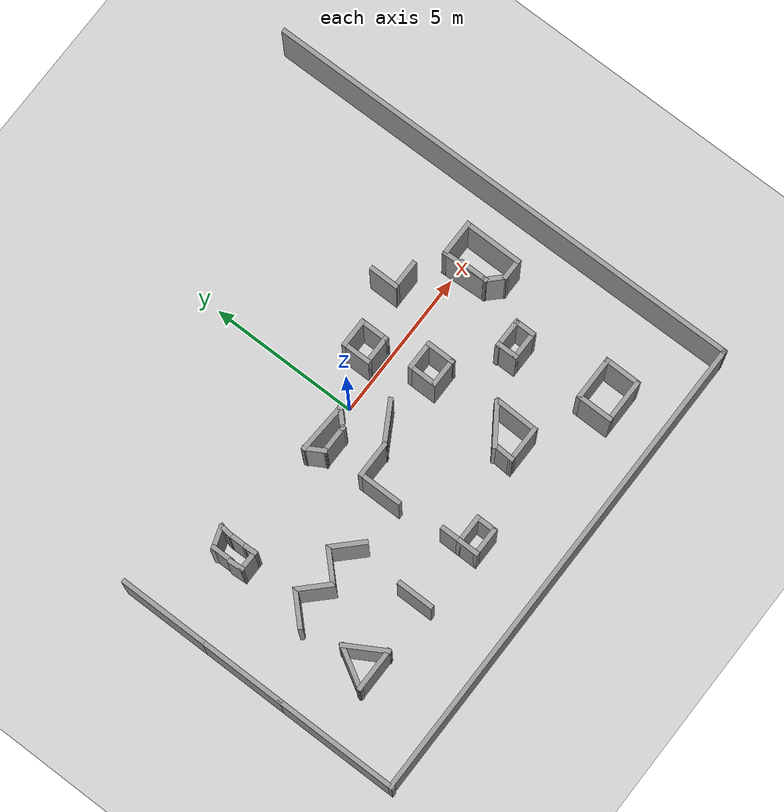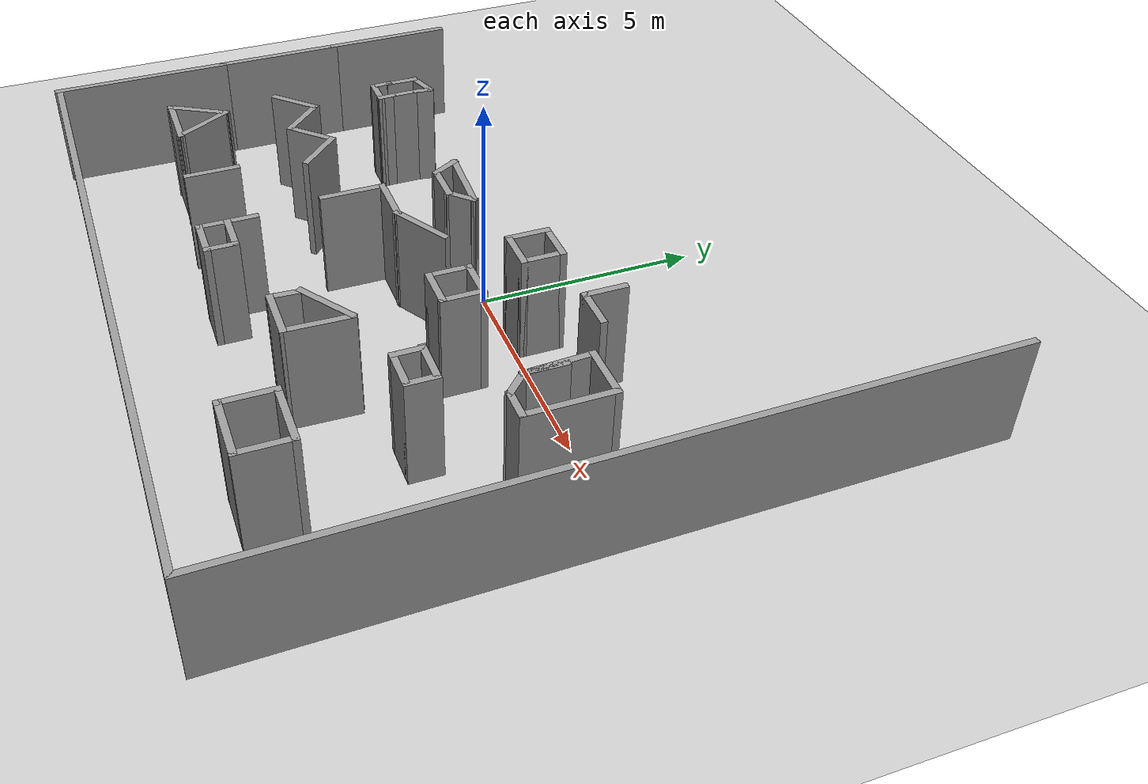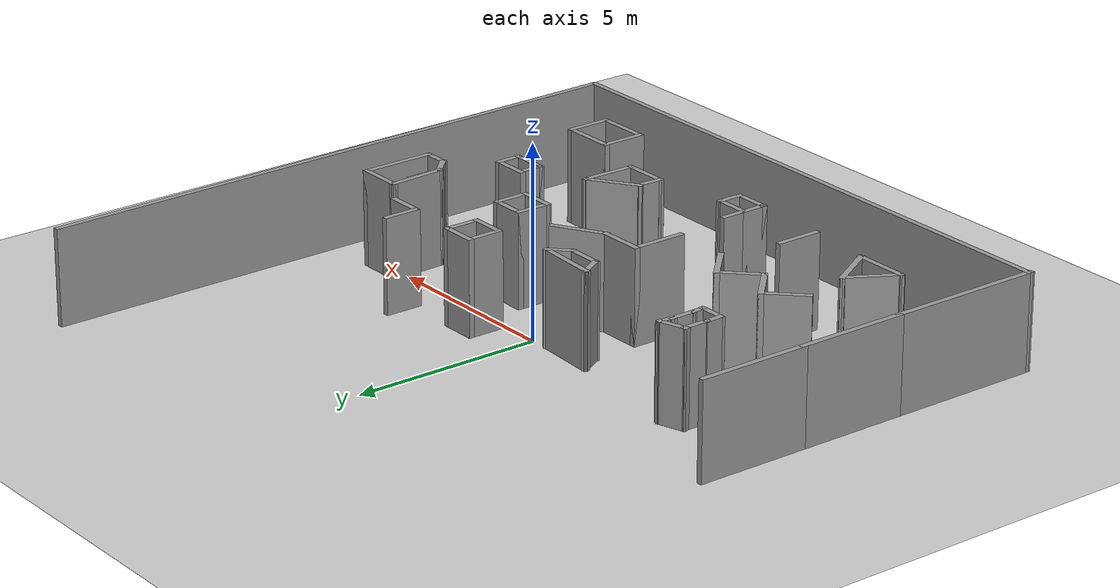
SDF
<sdf version="1.7">
 <world name="default">
  <model name="ground_plane">
   <static>1</static>
   <link name="link">
    <collision name="collision">
     <geometry><plane><normal>0 0 1</normal><size>100 100</size></plane></geometry>
     <surface>
      <contact><collide_bitmask>65535</collide_bitmask></contact>
      <friction><ode><mu>100</mu><mu2>50</mu2></ode></friction>
     </surface>
    </collision>
    <visual name="visual">
     <cast_shadows>0</cast_shadows>
     <geometry><plane><normal>0 0 1</normal><size>100 100</size></plane></geometry>
     <material>
      <script><uri>file://media/materials/scripts/gazebo.material</uri><name>Gazebo/Grey</name></script>
     </material>
    </visual>
   </link>
  </model>
  <model name="mazeworld.sdf">
   <pose>-0.284514 0.153221 0 0 -0 0</pose>
   <link name="Wall_154">
    <collision name="Wall_154_Collision">
     <geometry><box><size>0.778293 0.15 2.5</size></box></geometry>
     <pose>0 0 1.25 0 -0 0</pose>
    </collision>
    <visual name="Wall_154_Visual">
     <pose>0 0 1.25 0 -0 0</pose>
     <geometry><box><size>0.778293 0.15 2.5</size></box></geometry>
     <material>
      <script><uri>file://media/materials/scripts/gazebo.material</uri><name>Gazebo/Grey</name></script>
      <ambient>1 1 1 1</ambient>
     </material>
     <meta><layer>0</layer></meta>
    </visual>
    <pose>-5.6535 -0.150621 0 0 -0 -1.5708</pose>
   </link>
   <link name="Wall_155">
    <collision name="Wall_155_Collision">
     <geometry><box><size>0.546971 0.15 2.5</size></box></geometry>
     <pose>0 0 1.25 0 -0 0</pose>
    </collision>
    <visual name="Wall_155_Visual">
     <pose>0 0 1.25 0 -0 0</pose>
     <geometry><box><size>0.546971 0.15 2.5</size></box></geometry>
     <material>
      <script><uri>file://media/materials/scripts/gazebo.material</uri><name>Gazebo/Grey</name></script>
      <ambient>1 1 1 1</ambient>
     </material>
     <meta><layer>0</layer></meta>
    </visual>
    <pose>-5.66772 -0.662753 0 0 -0 -1.49979</pose>
   </link>
   <link name="Wall_156">
    <collision name="Wall_156_Collision">
     <geometry><box><size>0.75 0.15 2.5</size></box></geometry>
     <pose>0 0 1.25 0 -0 0</pose>
    </collision>
    <visual name="Wall_156_Visual">
     <pose>0 0 1.25 0 -0 0</pose>
     <geometry><box><size>0.75 0.15 2.5</size></box></geometry>
     <material>
      <script><uri>file://media/materials/scripts/gazebo.material</uri><name>Gazebo/Grey</name></script>
      <ambient>1 1 1 1</ambient>
     </material>
     <meta><layer>0</layer></meta>
    </visual>
    <pose>-5.35363 -0.860739 0 0 -0 0</pose>
   </link>
   <link name="Wall_157">
    <collision name="Wall_157_Collision">
     <geometry><box><size>0.450537 0.15 2.5</size></box></geometry>
     <pose>0 0 1.25 0 -0 0</pose>
    </collision>
    <visual name="Wall_157_Visual">
     <pose>0 0 1.25 0 -0 0</pose>
     <geometry><box><size>0.450537 0.15 2.5</size></box></geometry>
     <material>
      <script><uri>file://media/materials/scripts/gazebo.material</uri><name>Gazebo/Grey</name></script>
      <ambient>1 1 1 1</ambient>
     </material>
     <meta><layer>0</layer></meta>
    </visual>
    <pose>-5.06261 -0.710739 0 0 -0 1.63056</pose>
   </link>
   <link name="Wall_158">
    <collision name="Wall_158_Collision">
     <geometry><box><size>0.75 0.15 2.5</size></box></geometry>
     <pose>0 0 1.25 0 -0 0</pose>
    </collision>
    <visual name="Wall_158_Visual">
     <pose>0 0 1.25 0 -0 0</pose>
     <geometry><box><size>0.75 0.15 2.5</size></box></geometry>
     <material>
      <script><uri>file://media/materials/scripts/gazebo.material</uri><name>Gazebo/Grey</name></script>
      <ambient>1 1 1 1</ambient>
     </material>
     <meta><layer>0</layer></meta>
    </visual>
    <pose>-5.07158 -0.232446 0 0 -0 1.5708</pose>
   </link>
   <link name="Wall_159">
    <collision name="Wall_159_Collision">
     <geometry><box><size>0.480559 0.15 2.5</size></box></geometry>
     <pose>0 0 1.25 0 -0 0</pose>
    </collision>
    <visual name="Wall_159_Visual">
     <pose>0 0 1.25 0 -0 0</pose>
     <geometry><box><size>0.480559 0.15 2.5</size></box></geometry>
     <material>
      <script><uri>file://media/materials/scripts/gazebo.material</uri><name>Gazebo/Grey</name></script>
      <ambient>1 1 1 1</ambient>
     </material>
     <meta><layer>0</layer></meta>
    </visual>
    <pose>-5.04846 0.203407 0 0 -0 1.43086</pose>
   </link>
   <link name="Wall_160">
    <collision name="Wall_160_Collision">
     <geometry><box><size>0.810467 0.15 2.5</size></box></geometry>
     <pose>0 0 1.25 0 -0 0</pose>
    </collision>
    <visual name="Wall_160_Visual">
     <pose>0 0 1.25 0 -0 0</pose>
     <geometry><box><size>0.810467 0.15 2.5</size></box></geometry>
     <material>
      <script><uri>file://media/materials/scripts/gazebo.material</uri><name>Gazebo/Grey</name></script>
      <ambient>1 1 1 1</ambient>
     </material>
     <meta><layer>0</layer></meta>
    </visual>
    <pose>-5.36771 0.265539 0 0 -0 -2.82754</pose>
   </link>
   <link name="Wall_162">
    <collision name="Wall_162_Collision">
     <geometry><box><size>0.75 0.15 2.5</size></box></geometry>
     <pose>0 0 1.25 0 -0 0</pose>
    </collision>
    <visual name="Wall_162_Visual">
     <pose>0 0 1.25 0 -0 0</pose>
     <geometry><box><size>0.75 0.15 2.5</size></box></geometry>
     <material>
      <script><uri>file://media/materials/scripts/gazebo.material</uri><name>Gazebo/Grey</name></script>
      <ambient>1 1 1 1</ambient>
     </material>
     <meta><layer>0</layer></meta>
    </visual>
    <pose>-1.59908 -0.379212 0 0 -0 -1.0472</pose>
   </link>
   <link name="Wall_163">
    <collision name="Wall_163_Collision">
     <geometry><box><size>1 0.15 2.5</size></box></geometry>
     <pose>0 0 1.25 0 -0 0</pose>
    </collision>
    <visual name="Wall_163_Visual">
     <pose>0 0 1.25 0 -0 0</pose>
     <geometry><box><size>1 0.15 2.5</size></box></geometry>
     <material>
      <script><uri>file://media/materials/scripts/gazebo.material</uri><name>Gazebo/Grey</name></script>
      <ambient>1 1 1 1</ambient>
     </material>
     <meta><layer>0</layer></meta>
    </visual>
    <pose>-1.02408 -0.639019 0 0 -0 0</pose>
   </link>
   <link name="Wall_164">
    <collision name="Wall_164_Collision">
     <geometry><box><size>0.75 0.15 2.5</size></box></geometry>
     <pose>0 0 1.25 0 -0 0</pose>
    </collision>
    <visual name="Wall_164_Visual">
     <pose>0 0 1.25 0 -0 0</pose>
     <geometry><box><size>0.75 0.15 2.5</size></box></geometry>
     <material>
      <script><uri>file://media/materials/scripts/gazebo.material</uri><name>Gazebo/Grey</name></script>
      <ambient>1 1 1 1</ambient>
     </material>
     <meta><layer>0</layer></meta>
    </visual>
    <pose>-0.386951 -0.426887 0 0 -0 0.785398</pose>
   </link>
   <link name="Wall_165">
    <collision name="Wall_165_Collision">
     <geometry><box><size>1.72715 0.15 2.5</size></box></geometry>
     <pose>0 0 1.25 0 -0 0</pose>
    </collision>
    <visual name="Wall_165_Visual">
     <pose>0 0 1.25 0 -0 0</pose>
     <geometry><box><size>1.72715 0.15 2.5</size></box></geometry>
     <material>
      <script><uri>file://media/materials/scripts/gazebo.material</uri><name>Gazebo/Grey</name></script>
      <ambient>1 1 1 1</ambient>
     </material>
     <meta><layer>0</layer></meta>
    </visual>
    <pose>-0.961951 -0.16708 0 0 -0 3.0811</pose>
   </link>
   <link name="Wall_167">
    <collision name="Wall_167_Collision">
     <geometry><box><size>1 0.15 2.5</size></box></geometry>
     <pose>0 0 1.25 0 -0 0</pose>
    </collision>
    <visual name="Wall_167_Visual">
     <pose>0 0 1.25 0 -0 0</pose>
     <geometry><box><size>1 0.15 2.5</size></box></geometry>
     <material>
      <script><uri>file://media/materials/scripts/gazebo.material</uri><name>Gazebo/Grey</name></script>
      <ambient>1 1 1 1</ambient>
     </material>
     <meta><layer>0</layer></meta>
    </visual>
    <pose>1.41972 0.417555 0 0 -0 -1.5708</pose>
   </link>
   <link name="Wall_168">
    <collision name="Wall_168_Collision">
     <geometry><box><size>1 0.15 2.5</size></box></geometry>
     <pose>0 0 1.25 0 -0 0</pose>
    </collision>
    <visual name="Wall_168_Visual">
     <pose>0 0 1.25 0 -0 0</pose>
     <geometry><box><size>1 0.15 2.5</size></box></geometry>
     <material>
      <script><uri>file://media/materials/scripts/gazebo.material</uri><name>Gazebo/Grey</name></script>
      <ambient>1 1 1 1</ambient>
     </material>
     <meta><layer>0</layer></meta>
    </visual>
    <pose>1.84472 -0.007445 0 0 -0 0</pose>
   </link>
   <link name="Wall_169">
    <collision name="Wall_169_Collision">
     <geometry><box><size>1 0.15 2.5</size></box></geometry>
     <pose>0 0 1.25 0 -0 0</pose>
    </collision>
    <visual name="Wall_169_Visual">
     <pose>0 0 1.25 0 -0 0</pose>
     <geometry><box><size>1 0.15 2.5</size></box></geometry>
     <material>
      <script><uri>file://media/materials/scripts/gazebo.material</uri><name>Gazebo/Grey</name></script>
      <ambient>1 1 1 1</ambient>
     </material>
     <meta><layer>0</layer></meta>
    </visual>
    <pose>2.26972 0.417555 0 0 -0 1.5708</pose>
   </link>
   <link name="Wall_170">
    <collision name="Wall_170_Collision">
     <geometry><box><size>1 0.15 2.5</size></box></geometry>
     <pose>0 0 1.25 0 -0 0</pose>
    </collision>
    <visual name="Wall_170_Visual">
     <pose>0 0 1.25 0 -0 0</pose>
     <geometry><box><size>1 0.15 2.5</size></box></geometry>
     <material>
      <script><uri>file://media/materials/scripts/gazebo.material</uri><name>Gazebo/Grey</name></script>
      <ambient>1 1 1 1</ambient>
     </material>
     <meta><layer>0</layer></meta>
    </visual>
    <pose>1.84472 0.842555 0 0 -0 3.14159</pose>
   </link>
   <link name="Wall_172">
    <collision name="Wall_172_Collision">
     <geometry><box><size>1 0.15 2.5</size></box></geometry>
     <pose>0 0 1.25 0 -0 0</pose>
    </collision>
    <visual name="Wall_172_Visual">
     <pose>0 0 1.25 0 -0 0</pose>
     <geometry><box><size>1 0.15 2.5</size></box></geometry>
     <material>
      <script><uri>file://media/materials/scripts/gazebo.material</uri><name>Gazebo/Grey</name></script>
      <ambient>1 1 1 1</ambient>
     </material>
     <meta><layer>0</layer></meta>
    </visual>
    <pose>2.07046 -1.53466 0 0 -0 -1.5708</pose>
   </link>
   <link name="Wall_173">
    <collision name="Wall_173_Collision">
     <geometry><box><size>1 0.15 2.5</size></box></geometry>
     <pose>0 0 1.25 0 -0 0</pose>
    </collision>
    <visual name="Wall_173_Visual">
     <pose>0 0 1.25 0 -0 0</pose>
     <geometry><box><size>1 0.15 2.5</size></box></geometry>
     <material>
      <script><uri>file://media/materials/scripts/gazebo.material</uri><name>Gazebo/Grey</name></script>
      <ambient>1 1 1 1</ambient>
     </material>
     <meta><layer>0</layer></meta>
    </visual>
    <pose>2.49546 -1.95966 0 0 -0 0</pose>
   </link>
   <link name="Wall_174">
    <collision name="Wall_174_Collision">
     <geometry><box><size>1 0.15 2.5</size></box></geometry>
     <pose>0 0 1.25 0 -0 0</pose>
    </collision>
    <visual name="Wall_174_Visual">
     <pose>0 0 1.25 0 -0 0</pose>
     <geometry><box><size>1 0.15 2.5</size></box></geometry>
     <material>
      <script><uri>file://media/materials/scripts/gazebo.material</uri><name>Gazebo/Grey</name></script>
      <ambient>1 1 1 1</ambient>
     </material>
     <meta><layer>0</layer></meta>
    </visual>
    <pose>2.92046 -1.53466 0 0 -0 1.5708</pose>
   </link>
   <link name="Wall_175">
    <collision name="Wall_175_Collision">
     <geometry><box><size>1 0.15 2.5</size></box></geometry>
     <pose>0 0 1.25 0 -0 0</pose>
    </collision>
    <visual name="Wall_175_Visual">
     <pose>0 0 1.25 0 -0 0</pose>
     <geometry><box><size>1 0.15 2.5</size></box></geometry>
     <material>
      <script><uri>file://media/materials/scripts/gazebo.material</uri><name>Gazebo/Grey</name></script>
      <ambient>1 1 1 1</ambient>
     </material>
     <meta><layer>0</layer></meta>
    </visual>
    <pose>2.49546 -1.10966 0 0 -0 3.14159</pose>
   </link>
   <link name="Wall_177">
    <collision name="Wall_177_Collision">
     <geometry><box><size>1 0.15 2.5</size></box></geometry>
     <pose>0 0 1.25 0 -0 0</pose>
    </collision>
    <visual name="Wall_177_Visual">
     <pose>0 0 1.25 0 -0 0</pose>
     <geometry><box><size>1 0.15 2.5</size></box></geometry>
     <material>
      <script><uri>file://media/materials/scripts/gazebo.material</uri><name>Gazebo/Grey</name></script>
      <ambient>1 1 1 1</ambient>
     </material>
     <meta><layer>0</layer></meta>
    </visual>
    <pose>3.71145 1.15317 0 0 -0 -1.5708</pose>
   </link>
   <link name="Wall_178">
    <collision name="Wall_178_Collision">
     <geometry><box><size>1 0.15 2.5</size></box></geometry>
     <pose>0 0 1.25 0 -0 0</pose>
    </collision>
    <visual name="Wall_178_Visual">
     <pose>0 0 1.25 0 -0 0</pose>
     <geometry><box><size>1 0.15 2.5</size></box></geometry>
     <material>
      <script><uri>file://media/materials/scripts/gazebo.material</uri><name>Gazebo/Grey</name></script>
      <ambient>1 1 1 1</ambient>
     </material>
     <meta><layer>0</layer></meta>
    </visual>
    <pose>4.13645 0.72817 0 0 -0 0</pose>
   </link>
   <link name="Wall_182">
    <collision name="Wall_182_Collision">
     <geometry><box><size>1.25 0.15 2.5</size></box></geometry>
     <pose>0 0 1.25 0 -0 0</pose>
    </collision>
    <visual name="Wall_182_Visual">
     <pose>0 0 1.25 0 -0 0</pose>
     <geometry><box><size>1.25 0.15 2.5</size></box></geometry>
     <material>
      <script><uri>file://media/materials/scripts/gazebo.material</uri><name>Gazebo/Grey</name></script>
      <ambient>1 1 1 1</ambient>
     </material>
     <meta><layer>0</layer></meta>
    </visual>
    <pose>-5.57582 -2.84271 0 0 -0 0.785398</pose>
   </link>
   <link name="Wall_183">
    <collision name="Wall_183_Collision">
     <geometry><box><size>1.25 0.15 2.5</size></box></geometry>
     <pose>0 0 1.25 0 -0 0</pose>
    </collision>
    <visual name="Wall_183_Visual">
     <pose>0 0 1.25 0 -0 0</pose>
     <geometry><box><size>1.25 0.15 2.5</size></box></geometry>
     <material>
      <script><uri>file://media/materials/scripts/gazebo.material</uri><name>Gazebo/Grey</name></script>
      <ambient>1 1 1 1</ambient>
     </material>
     <meta><layer>0</layer></meta>
    </visual>
    <pose>-4.798 -2.84271 0 0 -0 -0.785398</pose>
   </link>
   <link name="Wall_185">
    <collision name="Wall_185_Collision">
     <geometry><box><size>1.25 0.15 2.5</size></box></geometry>
     <pose>0 0 1.25 0 -0 0</pose>
    </collision>
    <visual name="Wall_185_Visual">
     <pose>0 0 1.25 0 -0 0</pose>
     <geometry><box><size>1.25 0.15 2.5</size></box></geometry>
     <material>
      <script><uri>file://media/materials/scripts/gazebo.material</uri><name>Gazebo/Grey</name></script>
      <ambient>1 1 1 1</ambient>
     </material>
     <meta><layer>0</layer></meta>
    </visual>
    <pose>-4.02018 -2.84271 0 0 -0 0.785398</pose>
   </link>
   <link name="Wall_186">
    <collision name="Wall_186_Collision">
     <geometry><box><size>1.25 0.15 2.5</size></box></geometry>
     <pose>0 0 1.25 0 -0 0</pose>
    </collision>
    <visual name="Wall_186_Visual">
     <pose>0 0 1.25 0 -0 0</pose>
     <geometry><box><size>1.25 0.15 2.5</size></box></geometry>
     <material>
      <script><uri>file://media/materials/scripts/gazebo.material</uri><name>Gazebo/Grey</name></script>
      <ambient>1 1 1 1</ambient>
     </material>
     <meta><layer>0</layer></meta>
    </visual>
    <pose>-3.24236 -2.84271 0 0 -0 -0.785398</pose>
   </link>
   <link name="Wall_188">
    <collision name="Wall_188_Collision">
     <geometry><box><size>1.5 0.15 2.5</size></box></geometry>
     <pose>0 0 1.25 0 -0 0</pose>
    </collision>
    <visual name="Wall_188_Visual">
     <pose>0 0 1.25 0 -0 0</pose>
     <geometry><box><size>1.5 0.15 2.5</size></box></geometry>
     <material>
      <script><uri>file://media/materials/scripts/gazebo.material</uri><name>Gazebo/Grey</name></script>
      <ambient>1 1 1 1</ambient>
     </material>
     <meta><layer>0</layer></meta>
    </visual>
    <pose>-1.35298 -2.58492 0 0 -0 1.5708</pose>
   </link>
   <link name="Wall_189">
    <collision name="Wall_189_Collision">
     <geometry><box><size>1.25 0.15 2.5</size></box></geometry>
     <pose>0 0 1.25 0 -0 0</pose>
    </collision>
    <visual name="Wall_189_Visual">
     <pose>0 0 1.25 0 -0 0</pose>
     <geometry><box><size>1.25 0.15 2.5</size></box></geometry>
     <material>
      <script><uri>file://media/materials/scripts/gazebo.material</uri><name>Gazebo/Grey</name></script>
      <ambient>1 1 1 1</ambient>
     </material>
     <meta><layer>0</layer></meta>
    </visual>
    <pose>-0.802983 -1.90992 0 0 -0 0</pose>
   </link>
   <link name="Wall_190">
    <collision name="Wall_190_Collision">
     <geometry><box><size>1.5 0.15 2.5</size></box></geometry>
     <pose>0 0 1.25 0 -0 0</pose>
    </collision>
    <visual name="Wall_190_Visual">
     <pose>0 0 1.25 0 -0 0</pose>
     <geometry><box><size>1.5 0.15 2.5</size></box></geometry>
     <material>
      <script><uri>file://media/materials/scripts/gazebo.material</uri><name>Gazebo/Grey</name></script>
      <ambient>1 1 1 1</ambient>
     </material>
     <meta><layer>0</layer></meta>
    </visual>
    <pose>0.331584 -1.57242 0 0 -0 0.523599</pose>
   </link>
   <link name="Wall_192">
    <collision name="Wall_192_Collision">
     <geometry><box><size>0.75 0.15 2.5</size></box></geometry>
     <pose>0 0 1.25 0 -0 0</pose>
    </collision>
    <visual name="Wall_192_Visual">
     <pose>0 0 1.25 0 -0 0</pose>
     <geometry><box><size>0.75 0.15 2.5</size></box></geometry>
     <material>
      <script><uri>file://media/materials/scripts/gazebo.material</uri><name>Gazebo/Grey</name></script>
      <ambient>1 1 1 1</ambient>
     </material>
     <meta><layer>0</layer></meta>
    </visual>
    <pose>4.16413 -3.05064 0 0 -0 -1.5708</pose>
   </link>
   <link name="Wall_193">
    <collision name="Wall_193_Collision">
     <geometry><box><size>1 0.15 2.5</size></box></geometry>
     <pose>0 0 1.25 0 -0 0</pose>
    </collision>
    <visual name="Wall_193_Visual">
     <pose>0 0 1.25 0 -0 0</pose>
     <geometry><box><size>1 0.15 2.5</size></box></geometry>
     <material>
      <script><uri>file://media/materials/scripts/gazebo.material</uri><name>Gazebo/Grey</name></script>
      <ambient>1 1 1 1</ambient>
     </material>
     <meta><layer>0</layer></meta>
    </visual>
    <pose>4.58913 -3.35064 0 0 -0 0</pose>
   </link>
   <link name="Wall_194">
    <collision name="Wall_194_Collision">
     <geometry><box><size>0.75 0.15 2.5</size></box></geometry>
     <pose>0 0 1.25 0 -0 0</pose>
    </collision>
    <visual name="Wall_194_Visual">
     <pose>0 0 1.25 0 -0 0</pose>
     <geometry><box><size>0.75 0.15 2.5</size></box></geometry>
     <material>
      <script><uri>file://media/materials/scripts/gazebo.material</uri><name>Gazebo/Grey</name></script>
      <ambient>1 1 1 1</ambient>
     </material>
     <meta><layer>0</layer></meta>
    </visual>
    <pose>5.01413 -3.05064 0 0 -0 1.5708</pose>
   </link>
   <link name="Wall_197">
    <collision name="Wall_197_Collision">
     <geometry><box><size>1 0.15 2.5</size></box></geometry>
     <pose>0 0 1.25 0 -0 0</pose>
    </collision>
    <visual name="Wall_197_Visual">
     <pose>0 0 1.25 0 -0 0</pose>
     <geometry><box><size>1 0.15 2.5</size></box></geometry>
     <material>
      <script><uri>file://media/materials/scripts/gazebo.material</uri><name>Gazebo/Grey</name></script>
      <ambient>1 1 1 1</ambient>
     </material>
     <meta><layer>0</layer></meta>
    </visual>
    <pose>4.55331 -2.75064 0 0 -0 0</pose>
   </link>
   <link name="Wall_204">
    <collision name="Wall_204_Collision">
     <geometry><box><size>1.5 0.15 2.5</size></box></geometry>
     <pose>0 0 1.25 0 -0 0</pose>
    </collision>
    <visual name="Wall_204_Visual">
     <pose>0 0 1.25 0 -0 0</pose>
     <geometry><box><size>1.5 0.15 2.5</size></box></geometry>
     <material>
      <script><uri>file://media/materials/scripts/gazebo.material</uri><name>Gazebo/Grey</name></script>
      <ambient>1 1 1 1</ambient>
     </material>
     <meta><layer>0</layer></meta>
    </visual>
    <pose>-5.9805 -5.10528 0 0 -0 1.0472</pose>
   </link>
   <link name="Wall_205">
    <collision name="Wall_205_Collision">
     <geometry><box><size>1.5 0.15 2.5</size></box></geometry>
     <pose>0 0 1.25 0 -0 0</pose>
    </collision>
    <visual name="Wall_205_Visual">
     <pose>0 0 1.25 0 -0 0</pose>
     <geometry><box><size>1.5 0.15 2.5</size></box></geometry>
     <material>
      <script><uri>file://media/materials/scripts/gazebo.material</uri><name>Gazebo/Grey</name></script>
      <ambient>1 1 1 1</ambient>
     </material>
     <meta><layer>0</layer></meta>
    </visual>
    <pose>-5.30551 -5.10528 0 0 -0 -1.0472</pose>
   </link>
   <link name="Wall_206">
    <collision name="Wall_206_Collision">
     <geometry><box><size>1.5 0.15 2.5</size></box></geometry>
     <pose>0 0 1.25 0 -0 0</pose>
    </collision>
    <visual name="Wall_206_Visual">
     <pose>0 0 1.25 0 -0 0</pose>
     <geometry><box><size>1.5 0.15 2.5</size></box></geometry>
     <material>
      <script><uri>file://media/materials/scripts/gazebo.material</uri><name>Gazebo/Grey</name></script>
      <ambient>1 1 1 1</ambient>
     </material>
     <meta><layer>0</layer></meta>
    </visual>
    <pose>-5.643 -5.68984 0 0 -0 3.14159</pose>
   </link>
   <link name="Wall_209">
    <collision name="Wall_209_Collision">
     <geometry><box><size>1.25 0.15 2.5</size></box></geometry>
     <pose>0 0 1.25 0 -0 0</pose>
    </collision>
    <visual name="Wall_209_Visual">
     <pose>0 0 1.25 0 -0 0</pose>
     <geometry><box><size>1.25 0.15 2.5</size></box></geometry>
     <material>
      <script><uri>file://media/materials/scripts/gazebo.material</uri><name>Gazebo/Grey</name></script>
      <ambient>1 1 1 1</ambient>
     </material>
     <meta><layer>0</layer></meta>
    </visual>
    <pose>-3.19455 -5.31099 0 0 -0 1.5708</pose>
   </link>
   <link name="Wall_212">
    <collision name="Wall_212_Collision">
     <geometry><box><size>16.3828 0.15 2.5</size></box></geometry>
     <pose>0 0 1.25 0 -0 0</pose>
    </collision>
    <visual name="Wall_212_Visual">
     <pose>0 0 1.25 0 -0 0</pose>
     <geometry><box><size>16.3828 0.15 2.5</size></box></geometry>
     <material>
      <script><uri>file://media/materials/scripts/gazebo.material</uri><name>Gazebo/Grey</name></script>
      <ambient>1 1 1 1</ambient>
     </material>
     <meta><layer>0</layer></meta>
    </visual>
    <pose>7.94426 -0.003003 0 0 -0 -1.56269</pose>
   </link>
   <link name="Wall_215">
    <collision name="Wall_215_Collision">
     <geometry><box><size>0.75 0.15 2.5</size></box></geometry>
     <pose>0 0 1.25 0 -0 0</pose>
    </collision>
    <visual name="Wall_215_Visual">
     <pose>0 0 1.25 0 -0 0</pose>
     <geometry><box><size>0.75 0.15 2.5</size></box></geometry>
     <material>
      <script><uri>file://media/materials/scripts/gazebo.material</uri><name>Gazebo/Grey</name></script>
      <ambient>1 1 1 1</ambient>
     </material>
     <meta><layer>0</layer></meta>
    </visual>
    <pose>-1.15999 -5.07272 0 0 -0 -1.5708</pose>
   </link>
   <link name="Wall_216">
    <collision name="Wall_216_Collision">
     <geometry><box><size>1 0.15 2.5</size></box></geometry>
     <pose>0 0 1.25 0 -0 0</pose>
    </collision>
    <visual name="Wall_216_Visual">
     <pose>0 0 1.25 0 -0 0</pose>
     <geometry><box><size>1 0.15 2.5</size></box></geometry>
     <material>
      <script><uri>file://media/materials/scripts/gazebo.material</uri><name>Gazebo/Grey</name></script>
      <ambient>1 1 1 1</ambient>
     </material>
     <meta><layer>0</layer></meta>
    </visual>
    <pose>-0.734989 -5.37272 0 0 -0 0</pose>
   </link>
   <link name="Wall_217">
    <collision name="Wall_217_Collision">
     <geometry><box><size>0.75 0.15 2.5</size></box></geometry>
     <pose>0 0 1.25 0 -0 0</pose>
    </collision>
    <visual name="Wall_217_Visual">
     <pose>0 0 1.25 0 -0 0</pose>
     <geometry><box><size>0.75 0.15 2.5</size></box></geometry>
     <material>
      <script><uri>file://media/materials/scripts/gazebo.material</uri><name>Gazebo/Grey</name></script>
      <ambient>1 1 1 1</ambient>
     </material>
     <meta><layer>0</layer></meta>
    </visual>
    <pose>-0.309989 -5.67272 0 0 -0 -1.5708</pose>
   </link>
   <link name="Wall_218">
    <collision name="Wall_218_Collision">
     <geometry><box><size>1 0.15 2.5</size></box></geometry>
     <pose>0 0 1.25 0 -0 0</pose>
    </collision>
    <visual name="Wall_218_Visual">
     <pose>0 0 1.25 0 -0 0</pose>
     <geometry><box><size>1 0.15 2.5</size></box></geometry>
     <material>
      <script><uri>file://media/materials/scripts/gazebo.material</uri><name>Gazebo/Grey</name></script>
      <ambient>1 1 1 1</ambient>
     </material>
     <meta><layer>0</layer></meta>
    </visual>
    <pose>-0.734989 -5.97272 0 0 -0 3.14159</pose>
   </link>
   <link name="Wall_219">
    <collision name="Wall_219_Collision">
     <geometry><box><size>0.75 0.15 2.5</size></box></geometry>
     <pose>0 0 1.25 0 -0 0</pose>
    </collision>
    <visual name="Wall_219_Visual">
     <pose>0 0 1.25 0 -0 0</pose>
     <geometry><box><size>0.75 0.15 2.5</size></box></geometry>
     <material>
      <script><uri>file://media/materials/scripts/gazebo.material</uri><name>Gazebo/Grey</name></script>
      <ambient>1 1 1 1</ambient>
     </material>
     <meta><layer>0</layer></meta>
    </visual>
    <pose>-1.15999 -5.67272 0 0 -0 1.5708</pose>
   </link>
   <link name="Wall_223">
    <collision name="Wall_223_Collision">
     <geometry><box><size>0.770679 0.15 2.5</size></box></geometry>
     <pose>0 0 1.25 0 -0 0</pose>
    </collision>
    <visual name="Wall_223_Visual">
     <pose>0 0 1.25 0 -0 0</pose>
     <geometry><box><size>0.770679 0.15 2.5</size></box></geometry>
     <material>
      <script><uri>file://media/materials/scripts/gazebo.material</uri><name>Gazebo/Grey</name></script>
      <ambient>1 1 1 1</ambient>
     </material>
     <meta><layer>0</layer></meta>
    </visual>
    <pose>1.68817 -4.79593 0 0 -0 -1.62855</pose>
   </link>
   <link name="Wall_224">
    <collision name="Wall_224_Collision">
     <geometry><box><size>1.25 0.15 2.5</size></box></geometry>
     <pose>0 0 1.25 0 -0 0</pose>
    </collision>
    <visual name="Wall_224_Visual">
     <pose>0 0 1.25 0 -0 0</pose>
     <geometry><box><size>1.25 0.15 2.5</size></box></geometry>
     <material>
      <script><uri>file://media/materials/scripts/gazebo.material</uri><name>Gazebo/Grey</name></script>
      <ambient>1 1 1 1</ambient>
     </material>
     <meta><layer>0</layer></meta>
    </visual>
    <pose>2.22026 -5.10575 0 0 -0 0</pose>
   </link>
   <link name="Wall_225">
    <collision name="Wall_225_Collision">
     <geometry><box><size>1.51964 0.15 2.5</size></box></geometry>
     <pose>0 0 1.25 0 -0 0</pose>
    </collision>
    <visual name="Wall_225_Visual">
     <pose>0 0 1.25 0 -0 0</pose>
     <geometry><box><size>1.51964 0.15 2.5</size></box></geometry>
     <material>
      <script><uri>file://media/materials/scripts/gazebo.material</uri><name>Gazebo/Grey</name></script>
      <ambient>1 1 1 1</ambient>
     </material>
     <meta><layer>0</layer></meta>
    </visual>
    <pose>2.78817 -4.42093 0 0 -0 1.54465</pose>
   </link>
   <link name="Wall_226">
    <collision name="Wall_226_Collision">
     <geometry><box><size>1.48135 0.15 2.5</size></box></geometry>
     <pose>0 0 1.25 0 -0 0</pose>
    </collision>
    <visual name="Wall_226_Visual">
     <pose>0 0 1.25 0 -0 0</pose>
     <geometry><box><size>1.48135 0.15 2.5</size></box></geometry>
     <material>
      <script><uri>file://media/materials/scripts/gazebo.material</uri><name>Gazebo/Grey</name></script>
      <ambient>1 1 1 1</ambient>
     </material>
     <meta><layer>0</layer></meta>
    </visual>
    <pose>2.22026 -4.11111 0 0 -0 -2.54317</pose>
   </link>
   <link name="Wall_228">
    <collision name="Wall_228_Collision">
     <geometry><box><size>1.25 0.15 2.5</size></box></geometry>
     <pose>0 0 1.25 0 -0 0</pose>
    </collision>
    <visual name="Wall_228_Visual">
     <pose>0 0 1.25 0 -0 0</pose>
     <geometry><box><size>1.25 0.15 2.5</size></box></geometry>
     <material>
      <script><uri>file://media/materials/scripts/gazebo.material</uri><name>Gazebo/Grey</name></script>
      <ambient>1 1 1 1</ambient>
     </material>
     <meta><layer>0</layer></meta>
    </visual>
    <pose>4.3572 -6.11089 0 0 -0 -1.5708</pose>
   </link>
   <link name="Wall_229">
    <collision name="Wall_229_Collision">
     <geometry><box><size>1.5 0.15 2.5</size></box></geometry>
     <pose>0 0 1.25 0 -0 0</pose>
    </collision>
    <visual name="Wall_229_Visual">
     <pose>0 0 1.25 0 -0 0</pose>
     <geometry><box><size>1.5 0.15 2.5</size></box></geometry>
     <material>
      <script><uri>file://media/materials/scripts/gazebo.material</uri><name>Gazebo/Grey</name></script>
      <ambient>1 1 1 1</ambient>
     </material>
     <meta><layer>0</layer></meta>
    </visual>
    <pose>5.0322 -6.66089 0 0 -0 0</pose>
   </link>
   <link name="Wall_230">
    <collision name="Wall_230_Collision">
     <geometry><box><size>1.25 0.15 2.5</size></box></geometry>
     <pose>0 0 1.25 0 -0 0</pose>
    </collision>
    <visual name="Wall_230_Visual">
     <pose>0 0 1.25 0 -0 0</pose>
     <geometry><box><size>1.25 0.15 2.5</size></box></geometry>
     <material>
      <script><uri>file://media/materials/scripts/gazebo.material</uri><name>Gazebo/Grey</name></script>
      <ambient>1 1 1 1</ambient>
     </material>
     <meta><layer>0</layer></meta>
    </visual>
    <pose>5.7072 -6.11089 0 0 -0 1.5708</pose>
   </link>
   <link name="Wall_231">
    <collision name="Wall_231_Collision">
     <geometry><box><size>1.5 0.15 2.5</size></box></geometry>
     <pose>0 0 1.25 0 -0 0</pose>
    </collision>
    <visual name="Wall_231_Visual">
     <pose>0 0 1.25 0 -0 0</pose>
     <geometry><box><size>1.5 0.15 2.5</size></box></geometry>
     <material>
      <script><uri>file://media/materials/scripts/gazebo.material</uri><name>Gazebo/Grey</name></script>
      <ambient>1 1 1 1</ambient>
     </material>
     <meta><layer>0</layer></meta>
    </visual>
    <pose>5.0322 -5.56089 0 0 -0 3.14159</pose>
   </link>
   <link name="Wall_233">
    <collision name="Wall_233_Collision">
     <geometry><box><size>1 0.15 2.5</size></box></geometry>
     <pose>0 0 1.25 0 -0 0</pose>
    </collision>
    <visual name="Wall_233_Visual">
     <pose>0 0 1.25 0 -0 0</pose>
     <geometry><box><size>1 0.15 2.5</size></box></geometry>
     <material>
      <script><uri>file://media/materials/scripts/gazebo.material</uri><name>Gazebo/Grey</name></script>
      <ambient>1 1 1 1</ambient>
     </material>
     <meta><layer>0</layer></meta>
    </visual>
    <pose>5.46781 -0.826954 0 0 -0 -1.5708</pose>
   </link>
   <link name="Wall_234">
    <collision name="Wall_234_Collision">
     <geometry><box><size>0.75 0.15 2.5</size></box></geometry>
     <pose>0 0 1.25 0 -0 0</pose>
    </collision>
    <visual name="Wall_234_Visual">
     <pose>0 0 1.25 0 -0 0</pose>
     <geometry><box><size>0.75 0.15 2.5</size></box></geometry>
     <material>
      <script><uri>file://media/materials/scripts/gazebo.material</uri><name>Gazebo/Grey</name></script>
      <ambient>1 1 1 1</ambient>
     </material>
     <meta><layer>0</layer></meta>
    </visual>
    <pose>5.67994 -1.46409 0 0 -0 -0.785398</pose>
   </link>
   <link name="Wall_235">
    <collision name="Wall_235_Collision">
     <geometry><box><size>0.75 0.15 2.5</size></box></geometry>
     <pose>0 0 1.25 0 -0 0</pose>
    </collision>
    <visual name="Wall_235_Visual">
     <pose>0 0 1.25 0 -0 0</pose>
     <geometry><box><size>0.75 0.15 2.5</size></box></geometry>
     <material>
      <script><uri>file://media/materials/scripts/gazebo.material</uri><name>Gazebo/Grey</name></script>
      <ambient>1 1 1 1</ambient>
     </material>
     <meta><layer>0</layer></meta>
    </visual>
    <pose>6.19207 -1.67622 0 0 -0 0</pose>
   </link>
   <link name="Wall_236">
    <collision name="Wall_236_Collision">
     <geometry><box><size>2 0.15 2.5</size></box></geometry>
     <pose>0 0 1.25 0 -0 0</pose>
    </collision>
    <visual name="Wall_236_Visual">
     <pose>0 0 1.25 0 -0 0</pose>
     <geometry><box><size>2 0.15 2.5</size></box></geometry>
     <material>
      <script><uri>file://media/materials/scripts/gazebo.material</uri><name>Gazebo/Grey</name></script>
      <ambient>1 1 1 1</ambient>
     </material>
     <meta><layer>0</layer></meta>
    </visual>
    <pose>6.49207 -0.751218 0 0 -0 1.5708</pose>
   </link>
   <link name="Wall_242">
    <collision name="Wall_242_Collision">
     <geometry><box><size>1.25 0.15 2.5</size></box></geometry>
     <pose>0 0 1.25 0 -0 0</pose>
    </collision>
    <visual name="Wall_242_Visual">
     <pose>0 0 1.25 0 -0 0</pose>
     <geometry><box><size>1.25 0.15 2.5</size></box></geometry>
     <material>
      <script><uri>file://media/materials/scripts/gazebo.material</uri><name>Gazebo/Grey</name></script>
      <ambient>1 1 1 1</ambient>
     </material>
     <meta><layer>0</layer></meta>
    </visual>
    <pose>5.94207 0.173782 0 0 -0 3.14159</pose>
   </link>
   <link name="Wall_243">
    <collision name="Wall_243_Collision">
     <geometry><box><size>1.57775 0.15 2.5</size></box></geometry>
     <pose>0 0 1.25 0 -0 0</pose>
    </collision>
    <visual name="Wall_243_Visual">
     <pose>0 0 1.25 0 -0 0</pose>
     <geometry><box><size>1.57775 0.15 2.5</size></box></geometry>
     <material>
      <script><uri>file://media/materials/scripts/gazebo.material</uri><name>Gazebo/Grey</name></script>
      <ambient>1 1 1 1</ambient>
     </material>
     <meta><layer>0</layer></meta>
    </visual>
    <pose>5.42994 -0.539086 0 0 -0 -1.51773</pose>
   </link>
   <link name="Wall_44">
    <collision name="Wall_44_Collision">
     <geometry><box><size>3 0.15 2.5</size></box></geometry>
     <pose>0 0 1.25 0 -0 0</pose>
    </collision>
    <visual name="Wall_44_Visual">
     <pose>0 0 1.25 0 -0 0</pose>
     <geometry><box><size>3 0.15 2.5</size></box></geometry>
     <material>
      <script><uri>file://media/materials/scripts/gazebo.material</uri><name>Gazebo/Grey</name></script>
      <ambient>1 1 1 1</ambient>
     </material>
     <meta><layer>0</layer></meta>
    </visual>
    <pose>-8.01051 0.173933 0 0 -0 -1.5708</pose>
   </link>
   <link name="Wall_46">
    <collision name="Wall_46_Collision">
     <geometry><box><size>3 0.15 2.5</size></box></geometry>
     <pose>0 0 1.25 0 -0 0</pose>
    </collision>
    <visual name="Wall_46_Visual">
     <pose>0 0 1.25 0 -0 0</pose>
     <geometry><box><size>3 0.15 2.5</size></box></geometry>
     <material>
      <script><uri>file://media/materials/scripts/gazebo.material</uri><name>Gazebo/Grey</name></script>
      <ambient>1 1 1 1</ambient>
     </material>
     <meta><layer>0</layer></meta>
    </visual>
    <pose>-8.01051 -2.67607 0 0 -0 -1.5708</pose>
   </link>
   <link name="Wall_48">
    <collision name="Wall_48_Collision">
     <geometry><box><size>4.19804 0.15 2.5</size></box></geometry>
     <pose>0 0 1.25 0 -0 0</pose>
    </collision>
    <visual name="Wall_48_Visual">
     <pose>0 0 1.25 0 -0 0</pose>
     <geometry><box><size>4.19804 0.15 2.5</size></box></geometry>
     <material>
      <script><uri>file://media/materials/scripts/gazebo.material</uri><name>Gazebo/Grey</name></script>
      <ambient>1 1 1 1</ambient>
     </material>
     <meta><layer>0</layer></meta>
    </visual>
    <pose>-8.01051 -6.12509 0 0 -0 -1.5708</pose>
   </link>
   <link name="Wall_66">
    <collision name="Wall_66_Collision">
     <geometry><box><size>16.1348 0.15 2.5</size></box></geometry>
     <pose>0 0 1.25 0 -0 0</pose>
    </collision>
    <visual name="Wall_66_Visual">
     <pose>0 0 1.25 0 -0 0</pose>
     <geometry><box><size>16.1348 0.15 2.5</size></box></geometry>
     <material>
      <script><uri>file://media/materials/scripts/gazebo.material</uri><name>Gazebo/Grey</name></script>
      <ambient>1 1 1 1</ambient>
     </material>
     <meta><layer>0</layer></meta>
    </visual>
    <pose>-0.018131 -8.11271 0 0 -0 3.14079</pose>
   </link>
   <static>1</static>
  </model>
 </world>
</sdf>
